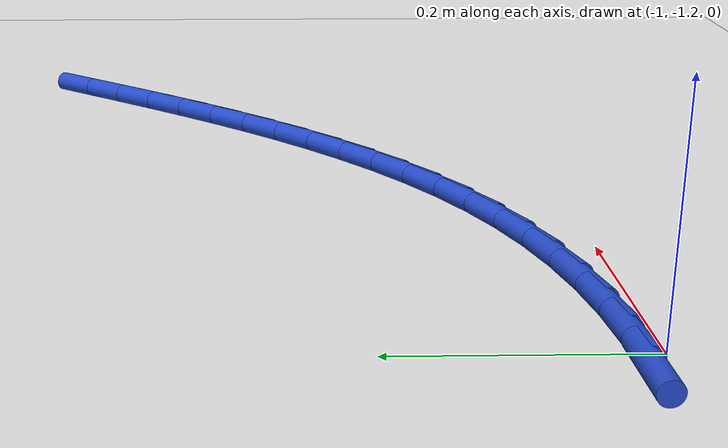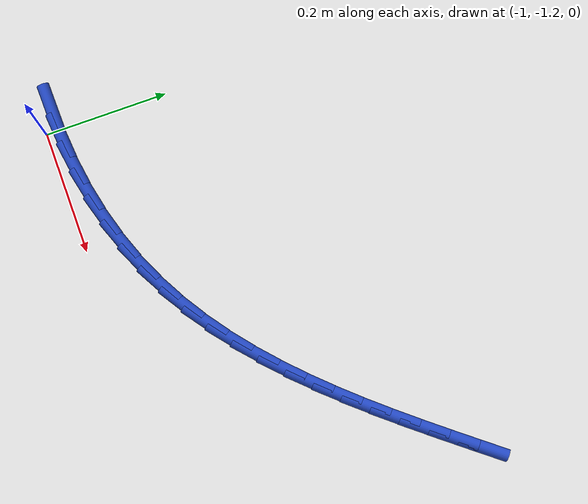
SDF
<sdf version="1.6">
 <world name="default">
  <model name="ground_plane">
   <static>1</static>
   <link name="link">
    <collision name="collision">
     <geometry><plane><normal>0 0 1</normal><size>100 100</size></plane></geometry>
     <surface><friction><ode><mu>100</mu><mu2>50</mu2></ode></friction></surface>
    </collision>
    <visual name="visual">
     <cast_shadows>0</cast_shadows>
     <geometry><plane><normal>0 0 1</normal><size>100 100</size></plane></geometry>
     <material>
      <script><uri>file://media/materials/scripts/gazebo.material</uri><name>Gazebo/WhiteGlow</name></script>
     </material>
    </visual>
   </link>
  </model>
  <model name="line">
   <link name="link_124">
    <pose>-1.0360469877925342 -1.1789185920760252 0.01 0 1.57 0.014681729258645262</pose>
    <collision name="collision">
     <geometry><cylinder><radius>0.01</radius><length>0.08</length></cylinder></geometry>
    </collision>
    <visual name="visual">
     <material>
      <script><name>Gazebo/Blue</name><uri>file://media/materials/scripts/gazebo.material</uri></script>
     </material>
     <geometry><cylinder><radius>0.01</radius><length>0.08</length></cylinder></geometry>
    </visual>
   </link>
   <link name="link_125">
    <pose>-0.9875386127725343 -1.1782063540714152 0.01 0 1.57 0.08072790516742413</pose>
    <collision name="collision">
     <geometry><cylinder><radius>0.01</radius><length>0.08</length></cylinder></geometry>
    </collision>
    <visual name="visual">
     <material>
      <script><name>Gazebo/Blue</name><uri>file://media/materials/scripts/gazebo.material</uri></script>
     </material>
     <geometry><cylinder><radius>0.01</radius><length>0.08</length></cylinder></geometry>
    </visual>
   </link>
   <link name="link_126">
    <pose>-0.9392613771198627 -1.1743005455702253 0.01 0 1.57 0.14722143892957568</pose>
    <collision name="collision">
     <geometry><cylinder><radius>0.01</radius><length>0.08</length></cylinder></geometry>
    </collision>
    <visual name="visual">
     <material>
      <script><name>Gazebo/Blue</name><uri>file://media/materials/scripts/gazebo.material</uri></script>
     </material>
     <geometry><cylinder><radius>0.01</radius><length>0.08</length></cylinder></geometry>
    </visual>
   </link>
   <link name="link_127">
    <pose>-0.8915300799233856 -1.167222262676445 0.01 0 1.57 0.21488377287568974</pose>
    <collision name="collision">
     <geometry><cylinder><radius>0.01</radius><length>0.08</length></cylinder></geometry>
    </collision>
    <visual name="visual">
     <material>
      <script><name>Gazebo/Blue</name><uri>file://media/materials/scripts/gazebo.material</uri></script>
     </material>
     <geometry><cylinder><radius>0.01</radius><length>0.08</length></cylinder></geometry>
    </visual>
   </link>
   <link name="link_128">
    <pose>-0.8446595202719662 -1.1569926014940635 0.01 0 1.57 0.2844439827380438</pose>
    <collision name="collision">
     <geometry><cylinder><radius>0.01</radius><length>0.08</length></cylinder></geometry>
    </collision>
    <visual name="visual">
     <material>
      <script><name>Gazebo/Blue</name><uri>file://media/materials/scripts/gazebo.material</uri></script>
     </material>
     <geometry><cylinder><radius>0.01</radius><length>0.08</length></cylinder></geometry>
    </visual>
   </link>
   <link name="link_129">
    <pose>-0.7989644972544687 -1.1436326581270713 0.01 0 1.57 0.3566343697695924</pose>
    <collision name="collision">
     <geometry><cylinder><radius>0.01</radius><length>0.08</length></cylinder></geometry>
    </collision>
    <visual name="visual">
     <material>
      <script><name>Gazebo/Blue</name><uri>file://media/materials/scripts/gazebo.material</uri></script>
     </material>
     <geometry><cylinder><radius>0.01</radius><length>0.08</length></cylinder></geometry>
    </visual>
   </link>
   <link name="link_130">
    <pose>-0.7547598099597577 -1.1271635286794572 0.01 0 1.57 0.43145757216678976</pose>
    <collision name="collision">
     <geometry><cylinder><radius>0.01</radius><length>0.08</length></cylinder></geometry>
    </collision>
    <visual name="visual">
     <material>
      <script><name>Gazebo/Blue</name><uri>file://media/materials/scripts/gazebo.material</uri></script>
     </material>
     <geometry><cylinder><radius>0.01</radius><length>0.08</length></cylinder></geometry>
    </visual>
   </link>
   <link name="link_131">
    <pose>-0.7123222391229608 -1.1076258502177105 0.01 0 1.57 0.5037817247299966</pose>
    <collision name="collision">
     <geometry><cylinder><radius>0.01</radius><length>0.08</length></cylinder></geometry>
    </collision>
    <visual name="visual">
     <material>
      <script><name>Gazebo/Blue</name><uri>file://media/materials/scripts/gazebo.material</uri></script>
     </material>
     <geometry><cylinder><radius>0.01</radius><length>0.08</length></cylinder></geometry>
    </visual>
   </link>
   <link name="link_132">
    <pose>-0.6716472440441521 -1.0852048555383462 0.01 0 1.57 0.5705217309359393</pose>
    <collision name="collision">
     <geometry><cylinder><radius>0.01</radius><length>0.08</length></cylinder></geometry>
    </collision>
    <visual name="visual">
     <material>
      <script><name>Gazebo/Blue</name><uri>file://media/materials/scripts/gazebo.material</uri></script>
     </material>
     <geometry><cylinder><radius>0.01</radius><length>0.08</length></cylinder></geometry>
    </visual>
   </link>
   <link name="link_133">
    <pose>-0.6326040609579267 -1.060150654528724 0.01 0 1.57 0.6311126510061863</pose>
    <collision name="collision">
     <geometry><cylinder><radius>0.01</radius><length>0.08</length></cylinder></geometry>
    </collision>
    <visual name="visual">
     <material>
      <script><name>Gazebo/Blue</name><uri>file://media/materials/scripts/gazebo.material</uri></script>
     </material>
     <geometry><cylinder><radius>0.01</radius><length>0.08</length></cylinder></geometry>
    </visual>
   </link>
   <link name="link_134">
    <pose>-0.5950613278304958 -1.0327136645787365 0.01 0 1.57 0.6852779826140395</pose>
    <collision name="collision">
     <geometry><cylinder><radius>0.01</radius><length>0.08</length></cylinder></geometry>
    </collision>
    <visual name="visual">
     <material>
      <script><name>Gazebo/Blue</name><uri>file://media/materials/scripts/gazebo.material</uri></script>
     </material>
     <geometry><cylinder><radius>0.01</radius><length>0.08</length></cylinder></geometry>
    </visual>
   </link>
   <link name="link_135">
    <pose>-0.5588876826280714 -1.003144303078276 0.01 0 1.57 0.7329572267382498</pose>
    <collision name="collision">
     <geometry><cylinder><radius>0.01</radius><length>0.08</length></cylinder></geometry>
    </collision>
    <visual name="visual">
     <material>
      <script><name>Gazebo/Blue</name><uri>file://media/materials/scripts/gazebo.material</uri></script>
     </material>
     <geometry><cylinder><radius>0.01</radius><length>0.08</length></cylinder></geometry>
    </visual>
   </link>
   <link name="link_136">
    <pose>-0.5239517633168632 -0.9716929874172334 0.01 0 1.57 0.7742392161751134</pose>
    <collision name="collision">
     <geometry><cylinder><radius>0.01</radius><length>0.08</length></cylinder></geometry>
    </collision>
    <visual name="visual">
     <material>
      <script><name>Gazebo/Blue</name><uri>file://media/materials/scripts/gazebo.material</uri></script>
     </material>
     <geometry><cylinder><radius>0.01</radius><length>0.08</length></cylinder></geometry>
    </visual>
   </link>
   <link name="link_137">
    <pose>-0.4901222078630849 -0.938610134985503 0.01 0 1.57 0.8093011179820128</pose>
    <collision name="collision">
     <geometry><cylinder><radius>0.01</radius><length>0.08</length></cylinder></geometry>
    </collision>
    <visual name="visual">
     <material>
      <script><name>Gazebo/Blue</name><uri>file://media/materials/scripts/gazebo.material</uri></script>
     </material>
     <geometry><cylinder><radius>0.01</radius><length>0.08</length></cylinder></geometry>
    </visual>
   </link>
   <link name="link_138">
    <pose>-0.4572676542329468 -0.9041461631729764 0.01 0 1.57 0.8383584126747856</pose>
    <collision name="collision">
     <geometry><cylinder><radius>0.01</radius><length>0.08</length></cylinder></geometry>
    </collision>
    <visual name="visual">
     <material>
      <script><name>Gazebo/Blue</name><uri>file://media/materials/scripts/gazebo.material</uri></script>
     </material>
     <geometry><cylinder><radius>0.01</radius><length>0.08</length></cylinder></geometry>
    </visual>
   </link>
   <link name="link_139">
    <pose>-0.42525674039266065 -0.8685514893695455 0.01 0 1.57 0.8616268518628443</pose>
    <collision name="collision">
     <geometry><cylinder><radius>0.01</radius><length>0.08</length></cylinder></geometry>
    </collision>
    <visual name="visual">
     <material>
      <script><name>Gazebo/Blue</name><uri>file://media/materials/scripts/gazebo.material</uri></script>
     </material>
     <geometry><cylinder><radius>0.01</radius><length>0.08</length></cylinder></geometry>
    </visual>
   </link>
   <link name="link_140">
    <pose>-0.39395810430843775 -0.832076530965103 0.01 0 1.57 0.8792950118589</pose>
    <collision name="collision">
     <geometry><cylinder><radius>0.01</radius><length>0.08</length></cylinder></geometry>
    </collision>
    <visual name="visual">
     <material>
      <script><name>Gazebo/Blue</name><uri>file://media/materials/scripts/gazebo.material</uri></script>
     </material>
     <geometry><cylinder><radius>0.01</radius><length>0.08</length></cylinder></geometry>
    </visual>
   </link>
   <link name="link_141">
    <pose>-0.3632403839464891 -0.7949717053495404 0.01 0 1.57 0.891505144590842</pose>
    <collision name="collision">
     <geometry><cylinder><radius>0.01</radius><length>0.08</length></cylinder></geometry>
    </collision>
    <visual name="visual">
     <material>
      <script><name>Gazebo/Blue</name><uri>file://media/materials/scripts/gazebo.material</uri></script>
     </material>
     <geometry><cylinder><radius>0.01</radius><length>0.08</length></cylinder></geometry>
    </visual>
   </link>
   <link name="link_142">
    <pose>-0.3329722172730273 -0.7574874299127513 0.01 0 1.57 0.8983399958992253</pose>
    <collision name="collision">
     <geometry><cylinder><radius>0.01</radius><length>0.08</length></cylinder></geometry>
    </collision>
    <visual name="visual">
     <material>
      <script><name>Gazebo/Blue</name><uri>file://media/materials/scripts/gazebo.material</uri></script>
     </material>
     <geometry><cylinder><radius>0.01</radius><length>0.08</length></cylinder></geometry>
    </visual>
   </link>
   <link name="link_143">
    <pose>-0.30302224225426305 -0.7198741220446273 0.01 0 1.57 0.9004093552967029</pose>
    <collision name="collision">
     <geometry><cylinder><radius>0.01</radius><length>0.08</length></cylinder></geometry>
    </collision>
    <visual name="visual">
     <material>
      <script><name>Gazebo/Blue</name><uri>file://media/materials/scripts/gazebo.material</uri></script>
     </material>
     <geometry><cylinder><radius>0.01</radius><length>0.08</length></cylinder></geometry>
    </visual>
   </link>
  </model>
 </world>
</sdf>
